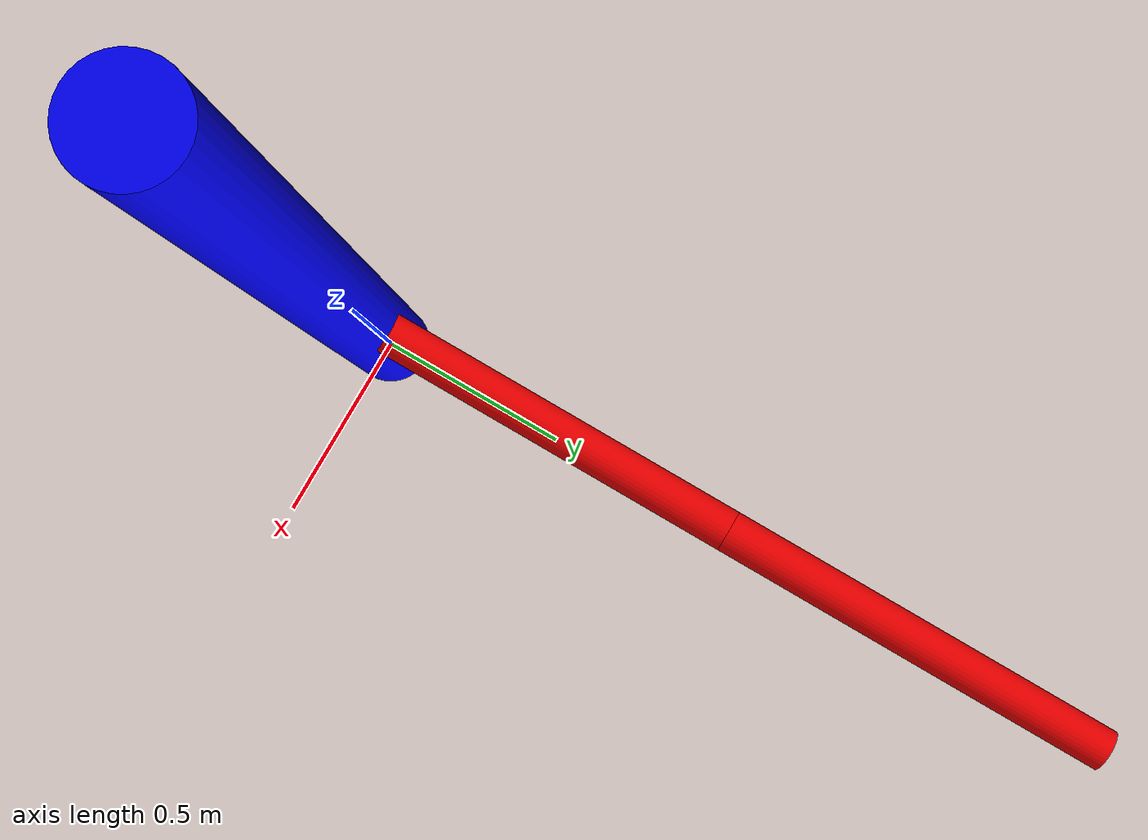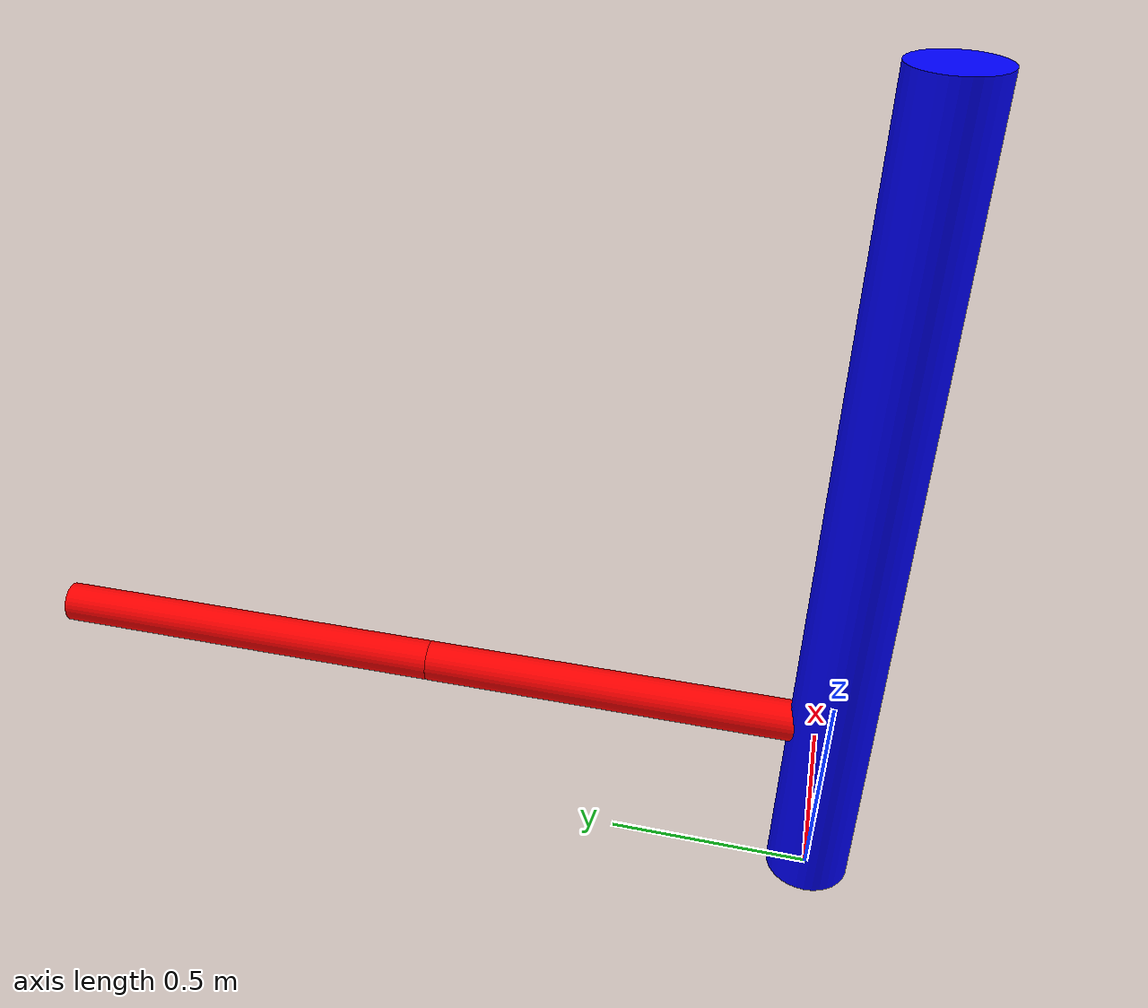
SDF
<?xml version="1.0"?>
<sdf version="1.6">
    <model name="tree_cylinders">

        <!-- Links -->
        <link name="trunk">
            <inertial>
                <mass>10.0</mass>
                <inertia>
                    <ixx>0.1</ixx><ixy>0</ixy><ixz>0</ixz>
                    <iyy>0.1</iyy><iyz>0</iyz>
                    <izz>0.02</izz>
                </inertia>
            </inertial>
            <collision name="collision">
                <geometry>
                    <mesh><uri>../../meshes/dae/Tree_Cylinders_Trunk.dae</uri></mesh>
                </geometry>
            </collision>
            <visual name="visual">
                <geometry>
                    <mesh><uri>../../meshes/dae/Tree_Cylinders_Trunk.dae</uri></mesh>
                </geometry>
                <material>
                    <ambient>0 0 1 1</ambient>
                    <diffuse>0 0 1 1</diffuse>
                    <specular>0 0 0 0</specular>
                    <lighting>false</lighting>
                </material>
                <cast_shadows>true</cast_shadows>
            </visual>
        </link>

        <link name="branch_module_01">
            <pose>0 0 -0.3 0 0 3.1416</pose>
            <inertial>
                <mass>0.5</mass>
                <inertia>
                    <ixx>0.1</ixx><ixy>0</ixy><ixz>0</ixz>
                    <iyy>0.1</iyy><iyz>0</iyz>
                    <izz>0.02</izz>
                </inertia>
            </inertial>
            <collision name="collision">
                <geometry>
                    <mesh><uri>../../meshes/dae/Tree_Cylinders_Branch.dae</uri></mesh>
                </geometry>
            </collision>
            <visual name="visual">
                <geometry>
                    <mesh><uri>../../meshes/dae/Tree_Cylinders_Branch.dae</uri></mesh>
                </geometry>
                <material>
                    <ambient>1 0 0 1</ambient>
                    <diffuse>1 0 0 1</diffuse>
                    <specular>0 0 0 0</specular>
                    <lighting>false</lighting>
                </material>
                <cast_shadows>true</cast_shadows>
            </visual>
        </link>

        <link name="branch_module_02">
            <pose>0 1 -0.3 0 0 3.1416</pose>
            <inertial>
                <mass>0.5</mass>
                <inertia>
                    <ixx>0.1</ixx><ixy>0</ixy><ixz>0</ixz>
                    <iyy>0.1</iyy><iyz>0</iyz>
                    <izz>0.02</izz>
                </inertia>
            </inertial>
            <collision name="collision">
                <geometry>
                    <mesh><uri>../../meshes/dae/Tree_Cylinders_Branch.dae</uri></mesh>
                </geometry>
            </collision>
            <visual name="visual">
                <geometry>
                    <mesh><uri>../../meshes/dae/Tree_Cylinders_Branch.dae</uri></mesh>
                </geometry>
                <material>
                    <ambient>1 0 0 1</ambient>
                    <diffuse>1 0 0 1</diffuse>
                    <specular>0 0 0 0</specular>
                    <lighting>false</lighting>
                </material>
                <cast_shadows>true</cast_shadows>
            </visual>
        </link>

        <!-- Joints -->
        <joint name="world_to_trunk" type="fixed">
            <parent>world</parent>
            <child>trunk</child>
        </joint>

        <joint name="trunk_to_branch_module_01" type="fixed">
            <parent>trunk</parent>
            <child>branch_module_01</child>
        </joint>

        <plugin filename="gz-sim-detachable-joint-system"
                name="gz::sim::systems::DetachableJoint">
            <parent_link>branch_module_01</parent_link>
            <child_model>tree_cylinders</child_model>
            <child_link>branch_module_02</child_link>
            <topic>/detach_branch_02</topic>
        </plugin>

    </model>
</sdf>
